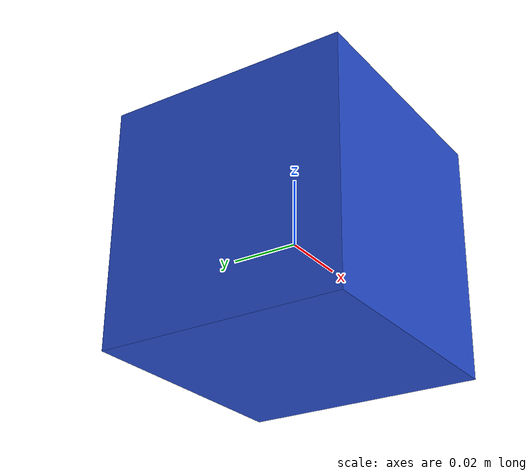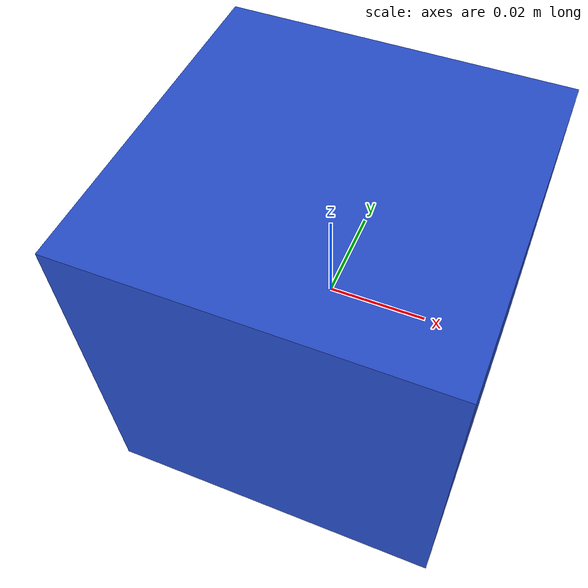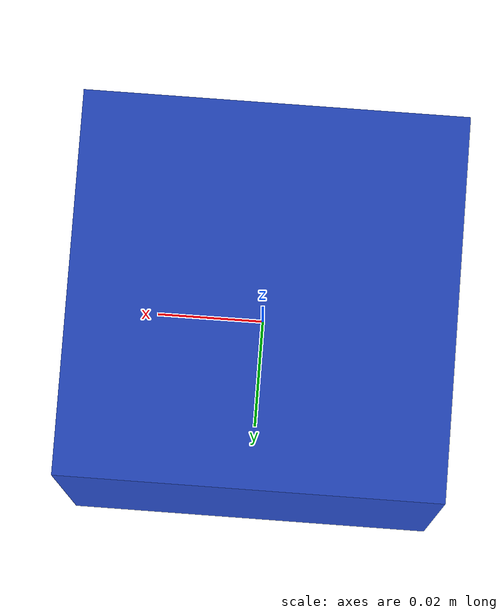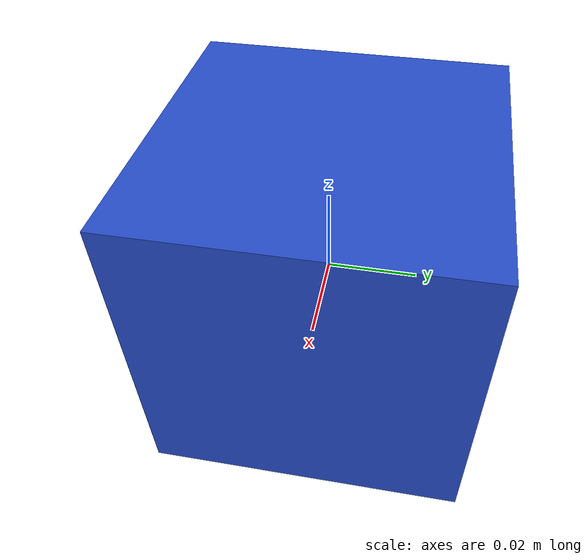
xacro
<robot name="simple_box" >
    <link name="my_box" >
        <inertial>
            <origin xyz="0.0 0.0 0.0" rpy="0.0 0.0 0.0"/>
            <mass value="0.4096"/>
            <inertia ixx="0.0000416" ixy="0.0" ixz="0.0" iyy="0.0000416" iyz="0.0" izz="0.0000416"/>
        </inertial>
        <visual>
            <origin xyz = "0 0 0" />
            <geometry>
                <box size="0.07 0.07 0.07"/>
            </geometry>
        </visual>
        <collision>
            <origin xyz = "0 0 0" />
            <geometry>
                <box size="0.07 0.07 0.07"/>
            </geometry>
        </collision>
    </link>

    <gazebo reference="my_box">
        <material>Gazebo/Blue</material>
        <collision>
            <surface>
            <friction>
                <ode>
                    <mu>2.0</mu>
                    <mu2>2.0</mu2>
                </ode>
            </friction>
            <contact>
                <ode>
                    <kp>2e5</kp>
                    <kd>10</kd>
                    <max_vel>0.1</max_vel>
                    <min_depth>0.001</min_depth>
                </ode>
            </contact>
            </surface>
        </collision>
    </gazebo>

    <!-- 09/01 버전 -->

</robot>
